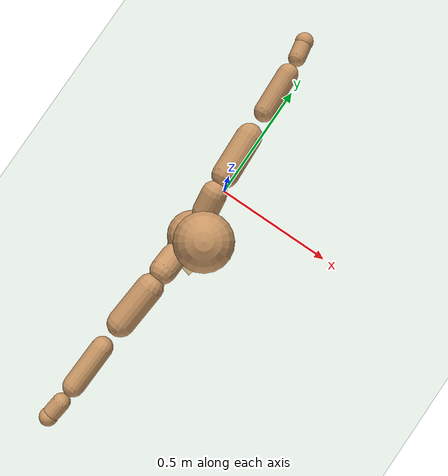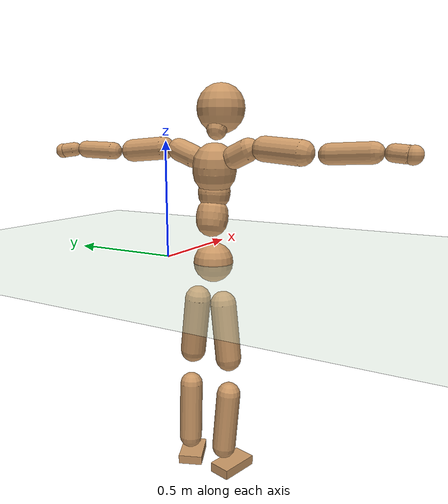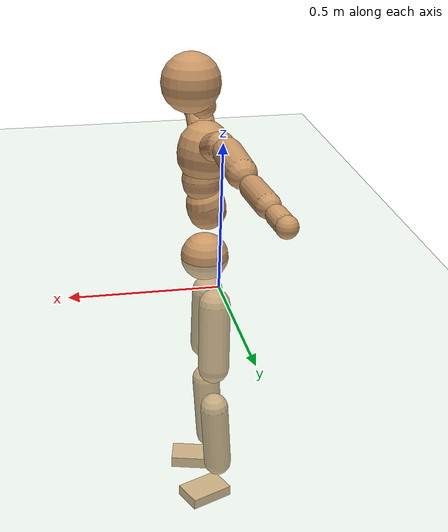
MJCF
<mujoco model="humanoid">
  <compiler coordinate="local" angle="radian"/>
  <default>
    <joint damping="0.0" armature="0.01" stiffness="0.0" limited="true"/>
    <geom conaffinity="1" condim="3" contype="7" margin="0.001" rgba="0.8 0.6 .4 1"/>
  </default>
  <asset>
    <texture type="skybox" builtin="gradient" rgb1=".4 .5 .6" rgb2="0 0 0" width="100" height="100"/>
    <texture builtin="flat" height="1278" mark="cross" markrgb="1 1 1" name="texgeom" random="0.01" rgb1="0.8 0.6 0.4" rgb2="0.8 0.6 0.4" type="cube" width="127"/>
    <texture builtin="checker" height="100" name="texplane" rgb1="0 0 0" rgb2="0.8 0.8 0.8" type="2d" width="100"/>
    <material name="MatPlane" reflectance="0.5" shininess="1" specular="1" texrepeat="60 60" texture="texplane"/>
    <material name="geom" texture="texgeom" texuniform="true"/>
  </asset>
  <worldbody>
    <light cutoff="100" diffuse="1 1 1" dir="-0 0 -1.3" directional="true" exponent="1" pos="0 0 1.3" specular=".1 .1 .1"/>
    <geom conaffinity="1" condim="3" name="floor" pos="0 0 0" rgba="0.8 0.9 0.8 1" size="100 100 .2" type="plane" material="MatPlane"/>
    <body name="Pelvis" pos="-0.0009 -0.2358 0.0007">
      <freejoint name="Pelvis"/>
      <geom type="sphere" contype="1" conaffinity="1" density="500" size="0.0848" pos="0.0000 0.0000 0.0000" name="Pelvis"/>
      <body name="L_Hip" pos="-0.0289 0.0517 -0.0823">
        <joint name="L_Hip_x" type="hinge" pos="0 0 0" axis="1 0 0" stiffness="800" damping="80" armature="0.02" range="-180.0000 180.0000"/>
        <joint name="L_Hip_y" type="hinge" pos="0 0 0" axis="0 1 0" stiffness="800" damping="80" armature="0.02" range="-180.0000 180.0000"/>
        <joint name="L_Hip_z" type="hinge" pos="0 0 0" axis="0 0 1" stiffness="800" damping="80" armature="0.02" range="-180.0000 180.0000"/>
        <geom type="capsule" contype="1" conaffinity="1" density="500" fromto="0.0015 0.0097 -0.0818 0.0058 0.0390 -0.3272" size="0.0562" name="L_Hip"/>
        <body name="L_Knee" pos="0.0073 0.0487 -0.409">
          <joint name="L_Knee_x" type="hinge" pos="0 0 0" axis="1 0 0" stiffness="800" damping="80" armature="0.02" range="-180.0000 180.0000"/>
          <joint name="L_Knee_y" type="hinge" pos="0 0 0" axis="0 1 0" stiffness="800" damping="80" armature="0.02" range="-180.0000 180.0000"/>
          <joint name="L_Knee_z" type="hinge" pos="0 0 0" axis="0 0 1" stiffness="800" damping="80" armature="0.02" range="-180.0000 180.0000"/>
          <geom type="capsule" contype="1" conaffinity="1" density="500" fromto="-0.0070 -0.0024 -0.0851 -0.0278 -0.0095 -0.3403" size="0.0512" name="L_Knee"/>
          <body name="L_Ankle" pos="-0.0348 -0.0119 -0.4253">
            <joint name="L_Ankle_x" type="hinge" pos="0 0 0" axis="1 0 0" stiffness="800" damping="80" armature="0.02" range="-180.0000 180.0000"/>
            <joint name="L_Ankle_y" type="hinge" pos="0 0 0" axis="0 1 0" stiffness="800" damping="80" armature="0.02" range="-180.0000 180.0000"/>
            <joint name="L_Ankle_z" type="hinge" pos="0 0 0" axis="0 0 1" stiffness="800" damping="80" armature="0.02" range="-180.0000 180.0000"/>
            <geom type="box" contype="1" conaffinity="1" density="500" pos="0.0587 0.0247 -0.0305" size="0.0818 0.0537 0.0202" quat="0.9803 0.0000 0.0000 0.1977" name="L_Ankle"/>
            <body name="L_Toe" pos="0.1175 0.0494 -0.0611">
              <joint name="L_Toe_x" type="hinge" pos="0 0 0" axis="1 0 0" stiffness="500" damping="50" armature="0.02" range="-180.0000 180.0000"/>
              <joint name="L_Toe_y" type="hinge" pos="0 0 0" axis="0 1 0" stiffness="500" damping="50" armature="0.02" range="-180.0000 180.0000"/>
              <joint name="L_Toe_z" type="hinge" pos="0 0 0" axis="0 0 1" stiffness="500" damping="50" armature="0.02" range="-180.0000 180.0000"/>
              <geom type="box" contype="1" conaffinity="1" density="500" pos="0.0000 0.0000 0.0328" size="0.001 0.0025 0.0011" quat="0.9794 0.0000 0.0000 0.2017" name="L_Toe"/>
            </body>
          </body>
        </body>
      </body>
      <body name="R_Hip" pos="-0.0264 -0.0544 -0.0903">
        <joint name="R_Hip_x" type="hinge" pos="0 0 0" axis="1 0 0" stiffness="800" damping="80" armature="0.02" range="-180.0000 180.0000"/>
        <joint name="R_Hip_y" type="hinge" pos="0 0 0" axis="0 1 0" stiffness="800" damping="80" armature="0.02" range="-180.0000 180.0000"/>
        <joint name="R_Hip_z" type="hinge" pos="0 0 0" axis="0 0 1" stiffness="800" damping="80" armature="0.02" range="-180.0000 180.0000"/>
        <geom type="capsule" contype="1" conaffinity="1" density="500" fromto="-0.0010 -0.0099 -0.0804 -0.0042 -0.0397 -0.3215" size="0.0555" name="R_Hip"/>
        <body name="R_Knee" pos="-0.0052 -0.0496 -0.4018">
          <joint name="R_Knee_x" type="hinge" pos="0 0 0" axis="1 0 0" stiffness="800" damping="80" armature="0.02" range="-180.0000 180.0000"/>
          <joint name="R_Knee_y" type="hinge" pos="0 0 0" axis="0 1 0" stiffness="800" damping="80" armature="0.02" range="-180.0000 180.0000"/>
          <joint name="R_Knee_z" type="hinge" pos="0 0 0" axis="0 0 1" stiffness="800" damping="80" armature="0.02" range="-180.0000 180.0000"/>
          <geom type="capsule" contype="1" conaffinity="1" density="500" fromto="-0.0064 0.0036 -0.0839 -0.0254 0.0146 -0.3358" size="0.0518" name="R_Knee"/>
          <body name="R_Ankle" pos="-0.0318 0.0182 -0.4197">
            <joint name="R_Ankle_x" type="hinge" pos="0 0 0" axis="1 0 0" stiffness="800" damping="80" armature="0.02" range="-180.0000 180.0000"/>
            <joint name="R_Ankle_y" type="hinge" pos="0 0 0" axis="0 1 0" stiffness="800" damping="80" armature="0.02" range="-180.0000 180.0000"/>
            <joint name="R_Ankle_z" type="hinge" pos="0 0 0" axis="0 0 1" stiffness="800" damping="80" armature="0.02" range="-180.0000 180.0000"/>
            <geom type="box" contype="1" conaffinity="1" density="500" pos="0.0637 -0.0156 -0.0324" size="0.0891 0.0491 0.0219" quat="0.9928 0.0000 0.0000 -0.1199" name="R_Ankle"/>
            <body name="R_Toe" pos="0.1274 -0.0312 -0.0649">
              <joint name="R_Toe_x" type="hinge" pos="0 0 0" axis="1 0 0" stiffness="500" damping="50" armature="0.02" range="-180.0000 180.0000"/>
              <joint name="R_Toe_y" type="hinge" pos="0 0 0" axis="0 1 0" stiffness="500" damping="50" armature="0.02" range="-180.0000 180.0000"/>
              <joint name="R_Toe_z" type="hinge" pos="0 0 0" axis="0 0 1" stiffness="500" damping="50" armature="0.02" range="-180.0000 180.0000"/>
              <geom type="box" contype="1" conaffinity="1" density="500" pos="0.0000 0.0000 0.0348" size="0.001 0.0024 0.0012" quat="0.9938 0.0000 0.0000 -0.1108" name="R_Toe"/>
            </body>
          </body>
        </body>
      </body>
      <body name="Torso" pos="-0.0178 0.0043 0.1195">
        <joint name="Torso_x" type="hinge" pos="0 0 0" axis="1 0 0" stiffness="1000" damping="100" armature="0.02" range="-180.0000 180.0000"/>
        <joint name="Torso_y" type="hinge" pos="0 0 0" axis="0 1 0" stiffness="1000" damping="100" armature="0.02" range="-180.0000 180.0000"/>
        <joint name="Torso_z" type="hinge" pos="0 0 0" axis="0 0 1" stiffness="1000" damping="100" armature="0.02" range="-180.0000 180.0000"/>
        <geom type="capsule" contype="1" conaffinity="1" density="500" fromto="0.0215 0.0027 0.0865 0.0143 0.0018 0.0577" size="0.0675" name="Torso"/>
        <body name="Spine" pos="0.0358 0.0045 0.1442">
          <joint name="Spine_x" type="hinge" pos="0 0 0" axis="1 0 0" stiffness="1000" damping="100" armature="0.02" range="-180.0000 180.0000"/>
          <joint name="Spine_y" type="hinge" pos="0 0 0" axis="0 1 0" stiffness="1000" damping="100" armature="0.02" range="-180.0000 180.0000"/>
          <joint name="Spine_z" type="hinge" pos="0 0 0" axis="0 0 1" stiffness="1000" damping="100" armature="0.02" range="-180.0000 180.0000"/>
          <geom type="capsule" contype="1" conaffinity="1" density="500" fromto="0.0008 -0.0014 0.0345 0.0005 -0.0010 0.0230" size="0.0678" name="Spine"/>
          <body name="Chest" pos="0.0013 -0.0024 0.0574">
            <joint name="Chest_x" type="hinge" pos="0 0 0" axis="1 0 0" stiffness="1000" damping="100" armature="0.02" range="-180.0000 180.0000"/>
            <joint name="Chest_y" type="hinge" pos="0 0 0" axis="0 1 0" stiffness="1000" damping="100" armature="0.02" range="-180.0000 180.0000"/>
            <joint name="Chest_z" type="hinge" pos="0 0 0" axis="0 0 1" stiffness="1000" damping="100" armature="0.02" range="-180.0000 180.0000"/>
            <geom type="capsule" contype="1" conaffinity="1" density="500" fromto="-0.0103 -0.0054 0.0834 -0.0069 -0.0036 0.0556" size="0.091" name="Chest"/>
            <body name="Neck" pos="-0.0163 -0.0143 0.2032">
              <joint name="Neck_x" type="hinge" pos="0 0 0" axis="1 0 0" stiffness="500" damping="50" armature="0.02" range="-180.0000 180.0000"/>
              <joint name="Neck_y" type="hinge" pos="0 0 0" axis="0 1 0" stiffness="500" damping="50" armature="0.02" range="-180.0000 180.0000"/>
              <joint name="Neck_z" type="hinge" pos="0 0 0" axis="0 0 1" stiffness="500" damping="50" armature="0.02" range="-180.0000 180.0000"/>
              <geom type="capsule" contype="1" conaffinity="1" density="500" fromto="0.0113 0.0017 0.0207 0.0450 0.0067 0.0830" size="0.0418" name="Neck"/>
              <body name="Head" pos="0.0563 0.0084 0.1037">
                <joint name="Head_x" type="hinge" pos="0 0 0" axis="1 0 0" stiffness="500" damping="50" armature="0.02" range="-180.0000 180.0000"/>
                <joint name="Head_y" type="hinge" pos="0 0 0" axis="0 1 0" stiffness="500" damping="50" armature="0.02" range="-180.0000 180.0000"/>
                <joint name="Head_z" type="hinge" pos="0 0 0" axis="0 0 1" stiffness="500" damping="50" armature="0.02" range="-180.0000 180.0000"/>
                <geom type="sphere" contype="1" conaffinity="1" density="500" size="0.1004" pos="0.0000 0.0000 0.0000" name="Head"/>
              </body>
            </body>
            <body name="L_Thorax" pos="-0.0163 0.0665 0.1069">
              <joint name="L_Thorax_x" type="hinge" pos="0 0 0" axis="1 0 0" stiffness="500" damping="50" armature="0.02" range="-180.0000 180.0000"/>
              <joint name="L_Thorax_y" type="hinge" pos="0 0 0" axis="0 1 0" stiffness="500" damping="50" armature="0.02" range="-180.0000 180.0000"/>
              <joint name="L_Thorax_z" type="hinge" pos="0 0 0" axis="0 0 1" stiffness="500" damping="50" armature="0.02" range="-180.0000 180.0000"/>
              <geom type="capsule" contype="1" conaffinity="1" density="500" fromto="-0.0027 0.0222 0.0093 -0.0110 0.0888 0.0372" size="0.0467" name="L_Thorax"/>
              <body name="L_Shoulder" pos="-0.0137 0.111 0.0465">
                <joint name="L_Shoulder_x" type="hinge" pos="0 0 0" axis="1 0 0" stiffness="500" damping="50" armature="0.02" range="-720.0000 720.0000"/>
                <joint name="L_Shoulder_y" type="hinge" pos="0 0 0" axis="0 1 0" stiffness="500" damping="50" armature="0.02" range="-720.0000 720.0000"/>
                <joint name="L_Shoulder_z" type="hinge" pos="0 0 0" axis="0 0 1" stiffness="500" damping="50" armature="0.02" range="-720.0000 720.0000"/>
                <geom type="capsule" contype="1" conaffinity="1" density="500" fromto="-0.0027 0.0531 -0.0039 -0.0109 0.2124 -0.0156" size="0.0473" name="L_Shoulder"/>
                <body name="L_Elbow" pos="-0.0136 0.2654 -0.0196">
                  <joint name="L_Elbow_x" type="hinge" pos="0 0 0" axis="1 0 0" stiffness="500" damping="50" armature="0.02" range="-720.0000 720.0000"/>
                  <joint name="L_Elbow_y" type="hinge" pos="0 0 0" axis="0 1 0" stiffness="500" damping="50" armature="0.02" range="-720.0000 720.0000"/>
                  <joint name="L_Elbow_z" type="hinge" pos="0 0 0" axis="0 0 1" stiffness="500" damping="50" armature="0.02" range="-720.0000 720.0000"/>
                  <geom type="capsule" contype="1" conaffinity="1" density="500" fromto="-0.0024 0.0510 0.0019 -0.0095 0.2041 0.0075" size="0.0374" name="L_Elbow"/>
                  <body name="L_Wrist" pos="-0.0119 0.2552 0.0094">
                    <joint name="L_Wrist_x" type="hinge" pos="0 0 0" axis="1 0 0" stiffness="300" damping="30" armature="0.02" range="-180.0000 180.0000"/>
                    <joint name="L_Wrist_y" type="hinge" pos="0 0 0" axis="0 1 0" stiffness="300" damping="30" armature="0.02" range="-180.0000 180.0000"/>
                    <joint name="L_Wrist_z" type="hinge" pos="0 0 0" axis="0 0 1" stiffness="300" damping="30" armature="0.02" range="-180.0000 180.0000"/>
                    <geom type="capsule" contype="1" conaffinity="1" density="500" fromto="-0.0029 0.0159 -0.0019 -0.0116 0.0635 -0.0077" size="0.0311" name="L_Wrist"/>
                    <body name="L_Hand" pos="-0.0146 0.0794 -0.0097">
                      <joint name="L_Hand_x" type="hinge" pos="0 0 0" axis="1 0 0" stiffness="300" damping="30" armature="0.02" range="-180.0000 180.0000"/>
                      <joint name="L_Hand_y" type="hinge" pos="0 0 0" axis="0 1 0" stiffness="300" damping="30" armature="0.02" range="-180.0000 180.0000"/>
                      <joint name="L_Hand_z" type="hinge" pos="0 0 0" axis="0 0 1" stiffness="300" damping="30" armature="0.02" range="-180.0000 180.0000"/>
                      <geom type="sphere" contype="1" conaffinity="1" density="500" size="0.0326" pos="0.0000 0.0000 0.0000" name="L_Hand"/>
                    </body>
                  </body>
                </body>
              </body>
            </body>
            <body name="R_Thorax" pos="-0.0192 -0.0795 0.1068">
              <joint name="R_Thorax_x" type="hinge" pos="0 0 0" axis="1 0 0" stiffness="500" damping="50" armature="0.02" range="-180.0000 180.0000"/>
              <joint name="R_Thorax_y" type="hinge" pos="0 0 0" axis="0 1 0" stiffness="500" damping="50" armature="0.02" range="-180.0000 180.0000"/>
              <joint name="R_Thorax_z" type="hinge" pos="0 0 0" axis="0 0 1" stiffness="500" damping="50" armature="0.02" range="-180.0000 180.0000"/>
              <geom type="capsule" contype="1" conaffinity="1" density="500" fromto="-0.0007 -0.0208 0.0095 -0.0027 -0.0831 0.0380" size="0.0475" name="R_Thorax"/>
              <body name="R_Shoulder" pos="-0.0033 -0.1039 0.0474">
                <joint name="R_Shoulder_x" type="hinge" pos="0 0 0" axis="1 0 0" stiffness="500" damping="50" armature="0.02" range="-720.0000 720.0000"/>
                <joint name="R_Shoulder_y" type="hinge" pos="0 0 0" axis="0 1 0" stiffness="500" damping="50" armature="0.02" range="-720.0000 720.0000"/>
                <joint name="R_Shoulder_z" type="hinge" pos="0 0 0" axis="0 0 1" stiffness="500" damping="50" armature="0.02" range="-720.0000 720.0000"/>
                <geom type="capsule" contype="1" conaffinity="1" density="500" fromto="-0.0043 -0.0524 -0.0043 -0.0173 -0.2098 -0.0174" size="0.0493" name="R_Shoulder"/>
                <body name="R_Elbow" pos="-0.0216 -0.2622 -0.0217">
                  <joint name="R_Elbow_x" type="hinge" pos="0 0 0" axis="1 0 0" stiffness="500" damping="50" armature="0.02" range="-720.0000 720.0000"/>
                  <joint name="R_Elbow_y" type="hinge" pos="0 0 0" axis="0 1 0" stiffness="500" damping="50" armature="0.02" range="-720.0000 720.0000"/>
                  <joint name="R_Elbow_z" type="hinge" pos="0 0 0" axis="0 0 1" stiffness="500" damping="50" armature="0.02" range="-720.0000 720.0000"/>
                  <geom type="capsule" contype="1" conaffinity="1" density="500" fromto="-0.0017 -0.0533 0.0021 -0.0068 -0.2133 0.0085" size="0.0388" name="R_Elbow"/>
                  <body name="R_Wrist" pos="-0.0085 -0.2666 0.0106">
                    <joint name="R_Wrist_x" type="hinge" pos="0 0 0" axis="1 0 0" stiffness="300" damping="30" armature="0.02" range="-180.0000 180.0000"/>
                    <joint name="R_Wrist_y" type="hinge" pos="0 0 0" axis="0 1 0" stiffness="300" damping="30" armature="0.02" range="-180.0000 180.0000"/>
                    <joint name="R_Wrist_z" type="hinge" pos="0 0 0" axis="0 0 1" stiffness="300" damping="30" armature="0.02" range="-180.0000 180.0000"/>
                    <geom type="capsule" contype="1" conaffinity="1" density="500" fromto="-0.0019 -0.0164 -0.0015 -0.0076 -0.0655 -0.0061" size="0.0319" name="R_Wrist"/>
                    <body name="R_Hand" pos="-0.0095 -0.0819 -0.0076">
                      <joint name="R_Hand_x" type="hinge" pos="0 0 0" axis="1 0 0" stiffness="300" damping="30" armature="0.02" range="-180.0000 180.0000"/>
                      <joint name="R_Hand_y" type="hinge" pos="0 0 0" axis="0 1 0" stiffness="300" damping="30" armature="0.02" range="-180.0000 180.0000"/>
                      <joint name="R_Hand_z" type="hinge" pos="0 0 0" axis="0 0 1" stiffness="300" damping="30" armature="0.02" range="-180.0000 180.0000"/>
                      <geom type="sphere" contype="1" conaffinity="1" density="500" size="0.0333" pos="0.0000 0.0000 0.0000" name="R_Hand"/>
                    </body>
                  </body>
                </body>
              </body>
            </body>
          </body>
        </body>
      </body>
    </body>
  </worldbody>
  <actuator>
    <motor name="L_Hip_x" joint="L_Hip_x" gear="500"/>
    <motor name="L_Hip_y" joint="L_Hip_y" gear="500"/>
    <motor name="L_Hip_z" joint="L_Hip_z" gear="500"/>
    <motor name="L_Knee_x" joint="L_Knee_x" gear="500"/>
    <motor name="L_Knee_y" joint="L_Knee_y" gear="500"/>
    <motor name="L_Knee_z" joint="L_Knee_z" gear="500"/>
    <motor name="L_Ankle_x" joint="L_Ankle_x" gear="500"/>
    <motor name="L_Ankle_y" joint="L_Ankle_y" gear="500"/>
    <motor name="L_Ankle_z" joint="L_Ankle_z" gear="500"/>
    <motor name="L_Toe_x" joint="L_Toe_x" gear="500"/>
    <motor name="L_Toe_y" joint="L_Toe_y" gear="500"/>
    <motor name="L_Toe_z" joint="L_Toe_z" gear="500"/>
    <motor name="R_Hip_x" joint="R_Hip_x" gear="500"/>
    <motor name="R_Hip_y" joint="R_Hip_y" gear="500"/>
    <motor name="R_Hip_z" joint="R_Hip_z" gear="500"/>
    <motor name="R_Knee_x" joint="R_Knee_x" gear="500"/>
    <motor name="R_Knee_y" joint="R_Knee_y" gear="500"/>
    <motor name="R_Knee_z" joint="R_Knee_z" gear="500"/>
    <motor name="R_Ankle_x" joint="R_Ankle_x" gear="500"/>
    <motor name="R_Ankle_y" joint="R_Ankle_y" gear="500"/>
    <motor name="R_Ankle_z" joint="R_Ankle_z" gear="500"/>
    <motor name="R_Toe_x" joint="R_Toe_x" gear="500"/>
    <motor name="R_Toe_y" joint="R_Toe_y" gear="500"/>
    <motor name="R_Toe_z" joint="R_Toe_z" gear="500"/>
    <motor name="Torso_x" joint="Torso_x" gear="500"/>
    <motor name="Torso_y" joint="Torso_y" gear="500"/>
    <motor name="Torso_z" joint="Torso_z" gear="500"/>
    <motor name="Spine_x" joint="Spine_x" gear="500"/>
    <motor name="Spine_y" joint="Spine_y" gear="500"/>
    <motor name="Spine_z" joint="Spine_z" gear="500"/>
    <motor name="Chest_x" joint="Chest_x" gear="500"/>
    <motor name="Chest_y" joint="Chest_y" gear="500"/>
    <motor name="Chest_z" joint="Chest_z" gear="500"/>
    <motor name="Neck_x" joint="Neck_x" gear="500"/>
    <motor name="Neck_y" joint="Neck_y" gear="500"/>
    <motor name="Neck_z" joint="Neck_z" gear="500"/>
    <motor name="Head_x" joint="Head_x" gear="500"/>
    <motor name="Head_y" joint="Head_y" gear="500"/>
    <motor name="Head_z" joint="Head_z" gear="500"/>
    <motor name="L_Thorax_x" joint="L_Thorax_x" gear="500"/>
    <motor name="L_Thorax_y" joint="L_Thorax_y" gear="500"/>
    <motor name="L_Thorax_z" joint="L_Thorax_z" gear="500"/>
    <motor name="L_Shoulder_x" joint="L_Shoulder_x" gear="500"/>
    <motor name="L_Shoulder_y" joint="L_Shoulder_y" gear="500"/>
    <motor name="L_Shoulder_z" joint="L_Shoulder_z" gear="500"/>
    <motor name="L_Elbow_x" joint="L_Elbow_x" gear="500"/>
    <motor name="L_Elbow_y" joint="L_Elbow_y" gear="500"/>
    <motor name="L_Elbow_z" joint="L_Elbow_z" gear="500"/>
    <motor name="L_Wrist_x" joint="L_Wrist_x" gear="500"/>
    <motor name="L_Wrist_y" joint="L_Wrist_y" gear="500"/>
    <motor name="L_Wrist_z" joint="L_Wrist_z" gear="500"/>
    <motor name="L_Hand_x" joint="L_Hand_x" gear="500"/>
    <motor name="L_Hand_y" joint="L_Hand_y" gear="500"/>
    <motor name="L_Hand_z" joint="L_Hand_z" gear="500"/>
    <motor name="R_Thorax_x" joint="R_Thorax_x" gear="500"/>
    <motor name="R_Thorax_y" joint="R_Thorax_y" gear="500"/>
    <motor name="R_Thorax_z" joint="R_Thorax_z" gear="500"/>
    <motor name="R_Shoulder_x" joint="R_Shoulder_x" gear="500"/>
    <motor name="R_Shoulder_y" joint="R_Shoulder_y" gear="500"/>
    <motor name="R_Shoulder_z" joint="R_Shoulder_z" gear="500"/>
    <motor name="R_Elbow_x" joint="R_Elbow_x" gear="500"/>
    <motor name="R_Elbow_y" joint="R_Elbow_y" gear="500"/>
    <motor name="R_Elbow_z" joint="R_Elbow_z" gear="500"/>
    <motor name="R_Wrist_x" joint="R_Wrist_x" gear="500"/>
    <motor name="R_Wrist_y" joint="R_Wrist_y" gear="500"/>
    <motor name="R_Wrist_z" joint="R_Wrist_z" gear="500"/>
    <motor name="R_Hand_x" joint="R_Hand_x" gear="500"/>
    <motor name="R_Hand_y" joint="R_Hand_y" gear="500"/>
    <motor name="R_Hand_z" joint="R_Hand_z" gear="500"/>
  </actuator>
  <contact>
    <exclude body1="Torso" body2="Chest"/>
    <exclude body1="Head" body2="Chest"/>
    <exclude body1="R_Knee" body2="R_Toe"/>
    <exclude body1="R_Knee" body2="L_Ankle"/>
    <exclude body1="R_Knee" body2="L_Toe"/>
    <exclude body1="L_Knee" body2="L_Toe"/>
    <exclude body1="L_Knee" body2="R_Ankle"/>
    <exclude body1="L_Knee" body2="R_Toe"/>
    <exclude body1="L_Shoulder" body2="Chest"/>
    <exclude body1="R_Shoulder" body2="Chest"/>
  </contact>
  <sensor/>
  <size njmax="700" nconmax="700"/>
</mujoco>
